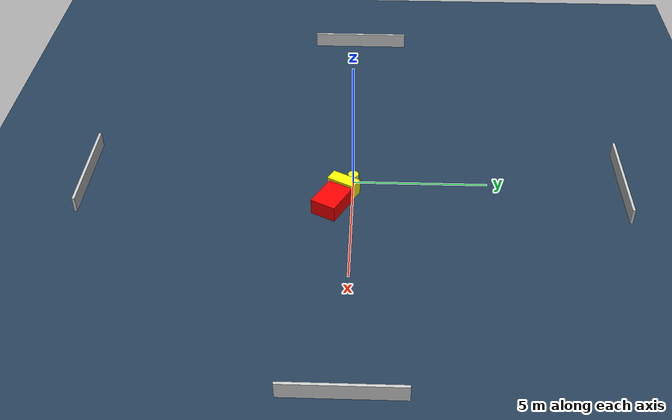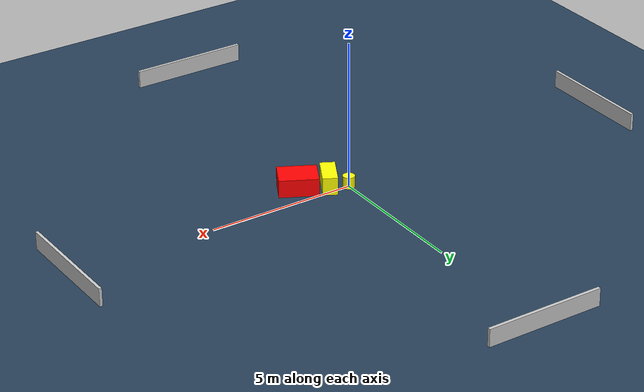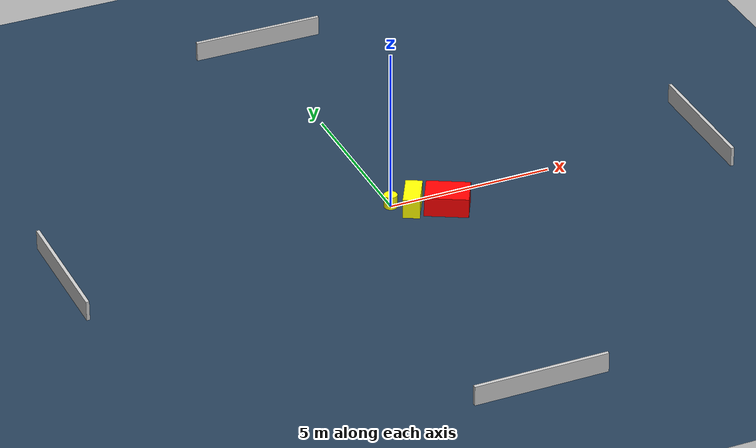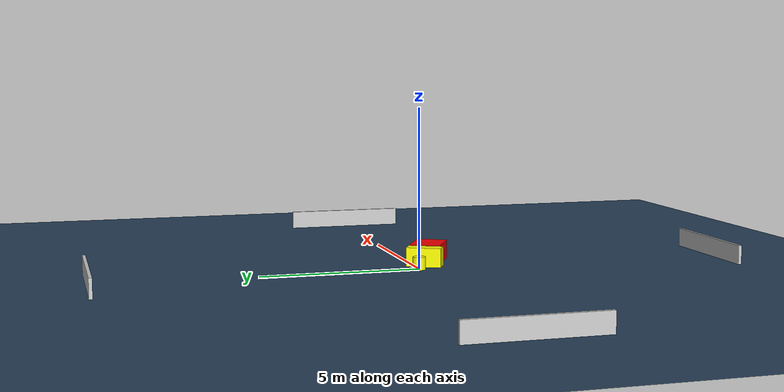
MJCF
<?xml version="1.0" ?>
<mujoco model="generated_environment">
  <option timestep="0.01" integrator="RK4" cone="elliptic"/>
  <default>
    <geom density="1"/>
  </default>
  <asset>
    <texture builtin="gradient" height="3072" name="skybox" rgb1="0.3 0.5 0.7" rgb2="0 0 0" type="skybox" width="512"/>
    <texture builtin="checker" height="300" name="groundplane" rgb1="0.2 0.3 0.4" rgb2="0.1 0.2 0.3" type="2d" width="300"/>
    <material name="groundplane" reflectance="0.2" texrepeat="5 5" texture="groundplane"/>
  </asset>
  <worldbody>
    <light dir="0 0 -1" directional="true" pos="0 0 1.5"/>
    <geom condim="3" friction="0.5 0.005 0.001" material="groundplane" name="floor" pos="0 0 0" size="0 0 0.05" type="plane"/>
    <body name="walls">
      <geom name="wall_1" condim="4" pos="-10.0 0.0 0.3" rgba="0.800000011920929 0.800000011920929 0.800000011920929 1.0" size="0.05 2.0 0.3" type="box"/>
      <geom name="wall_2" condim="4" pos="10.0 0.0 0.3" rgba="0.800000011920929 0.800000011920929 0.800000011920929 1.0" size="0.05 2.0 0.3" type="box"/>
      <geom name="wall_3" condim="4" pos="0.0 -10.0 0.3" rgba="0.800000011920929 0.800000011920929 0.800000011920929 1.0" size="2.0 0.05 0.3" type="box"/>
      <geom name="wall_4" condim="4" pos="0.0 10.0 0.3" rgba="0.800000011920929 0.800000011920929 0.800000011920929 1.0" size="2.0 0.05 0.3" type="box"/>
    </body>
    <body name="robot">
      <joint name="joint_x" type="slide" pos="0 0 0" axis="1 0 0"/>
      <joint name="joint_y" type="slide" pos="0 0 0" axis="0 1 0"/>
      <geom name="robot" type="cylinder" pos="0.0 0.0 0.2" size="0.2 0.2 0.0" mass="5.0" friction="1.0 0.005 0.0001" condim="4" rgba="1.0 1.0 0.0 1.0"/>
    </body>
    <body name="obstacle_1_movable">
      <geom name="obstacle_1_movable" condim="4" pos="0.5399452211752472 -0.34045224784040345 0.3" euler="0 0 241.6803503215397" friction="0.0 0.005 0.001" rgba="1.0 1.0 0.0 1.0" size="0.5496437969454322 0.24753358714261334 0.3" type="box" mass="0.1"/>
      <joint type="free"/>
    </body>
    <body name="obstacle_2_static">
      <geom name="obstacle_2_static" condim="4" pos="1.4535955398089837 -0.7360049677817861 0.3" euler="0 0 152.04329224458678" friction="0.0 0.005 0.001" rgba="1.0 0.0 0.0 1.0" size="0.6448658315896907 0.48481406229228735 0.3" type="box"/>
    </body>
  </worldbody>
  <actuator>
    <motor name="actuator_x" joint="joint_x" gear="1" ctrlrange="-1 1"/>
    <motor name="actuator_y" joint="joint_y" gear="1" ctrlrange="-1 1"/>
  </actuator>
</mujoco>
